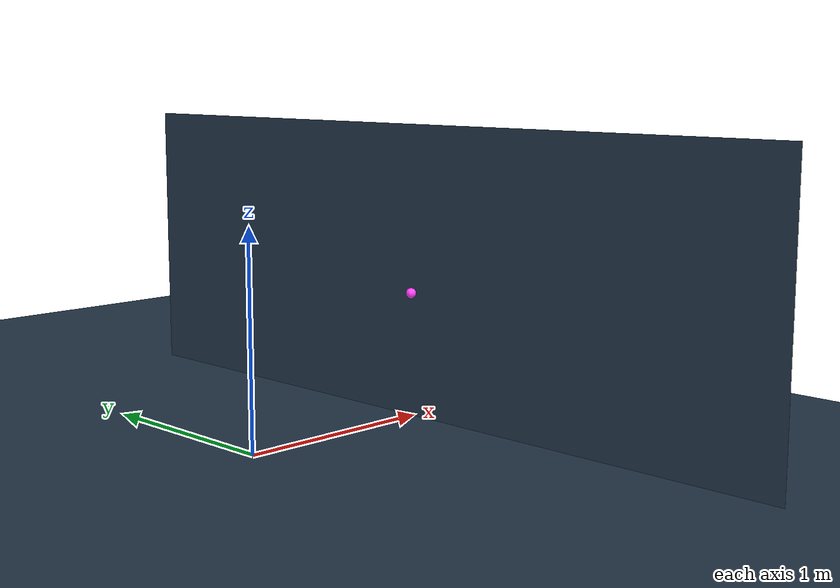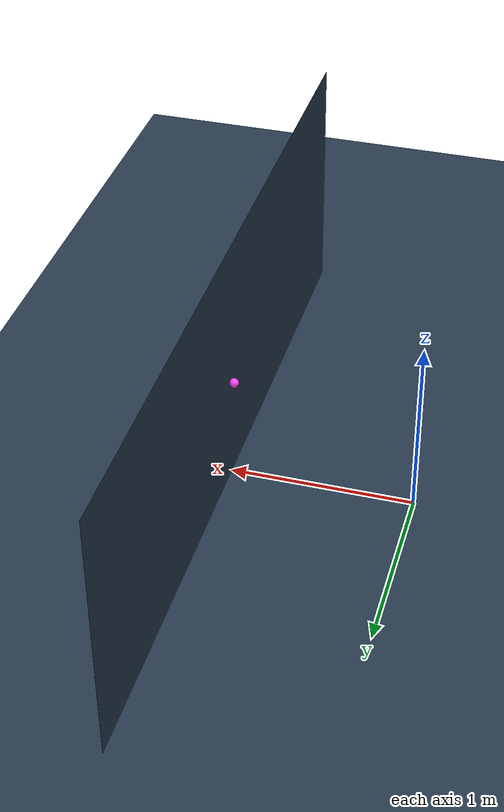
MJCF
<mujoco model="sticky_test">
  <option timestep="0.004" integrator="implicitfast" iterations="10" ls_iterations="8"/>

  <!-- viewer look: brighter headlight, no haze (reflection also off via material) -->
  <visual>
    <headlight ambient="0.4 0.4 0.4" diffuse="0.65 0.65 0.65" specular="0.1 0.1 0.1"/>
    <map haze="0"/>
  </visual>

  <asset>
    <texture type="skybox" builtin="gradient" rgb1="0.3 0.5 0.7" rgb2="0 0 0" width="512" height="512"/>
    <texture name="grid" type="2d" builtin="checker" rgb1="0.2 0.3 0.4" rgb2="0.1 0.15 0.2"
             width="512" height="512"/>
    <material name="grid" texture="grid" texrepeat="10 10" reflectance="0"/>
    <material name="foot" rgba="1 0.258824 0.976471 1"/>
  </asset>

  <worldbody>
    <light pos="0 0 2.0" dir="0 0 -1" diffuse="0.8 0.8 0.8"/>
    <geom name="floor" type="plane" size="0 0 0.05" material="grid" contype="1" conaffinity="1"
          priority="1" friction="2 0.5 0.5"/>
    <!-- vertical wall: plane at x=1, normal facing -x (toward the foot) -->
    <geom name="wall" type="plane" pos="1 0 0.6" zaxis="-1 0 0" size="0.8 2 0.05"
          material="grid" contype="1" conaffinity="1" friction="2 0.5 0.5"/>

    <!-- single foot, center at x=0.976 so the sphere (r=0.025) penetrates the wall ~1mm -->
    <body name="foot" pos="0.976 0 0.6">
      <freejoint name="foot"/>
      <geom name="foot" type="sphere" size="0.025" density="1810" material="foot"
            contype="0" conaffinity="1" friction="2 0.5 0.5"/>
    </body>
  </worldbody>

  <actuator>
    <adhesion name="stick" body="foot" ctrlrange="0 1" gain="10"/>
  </actuator>
</mujoco>
